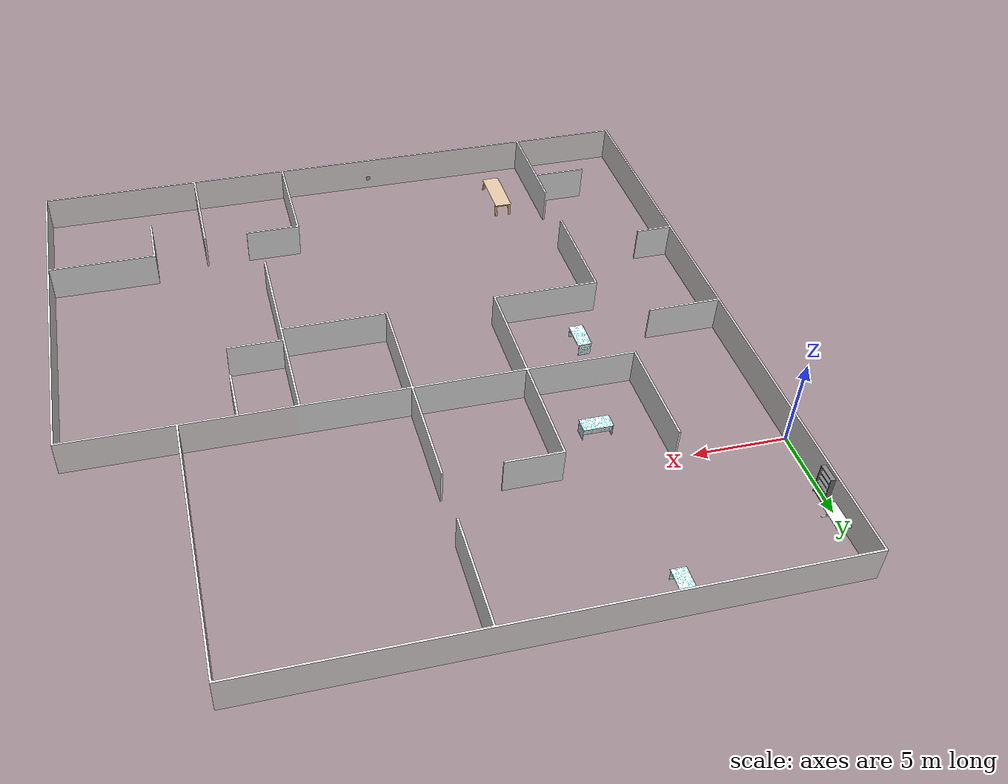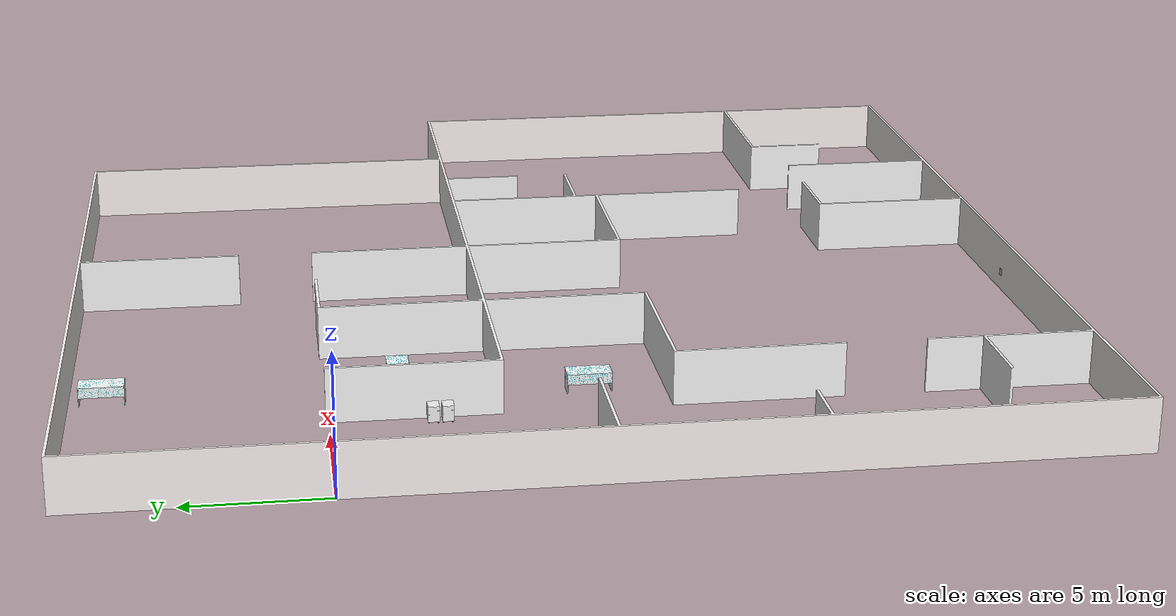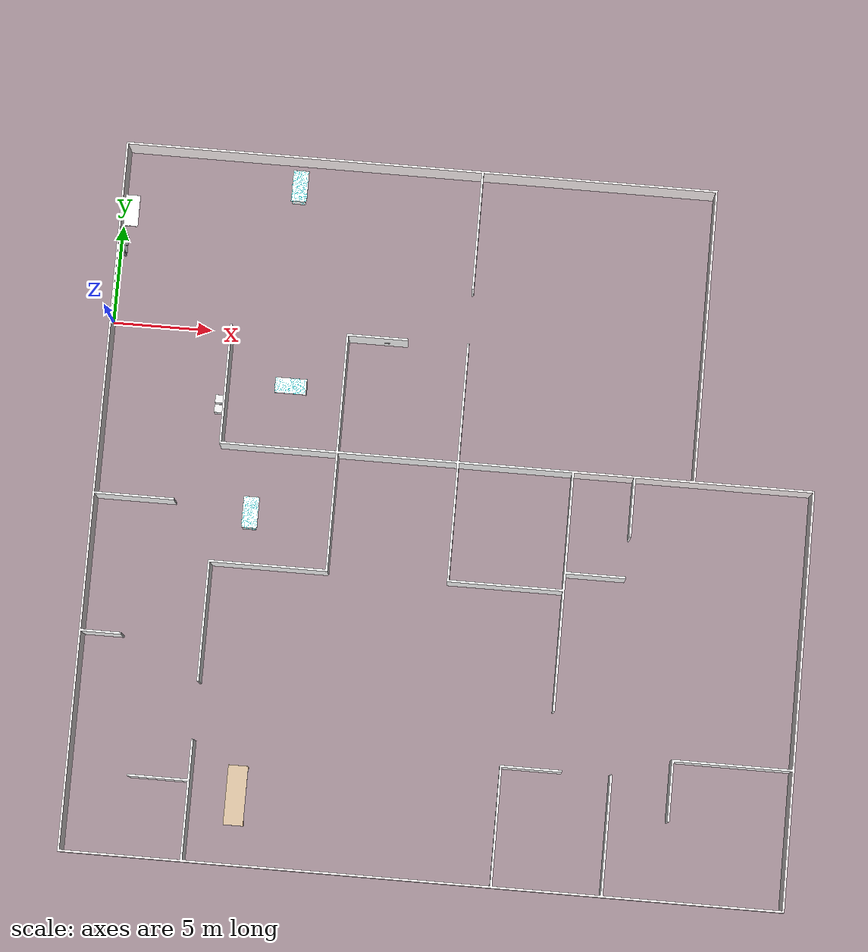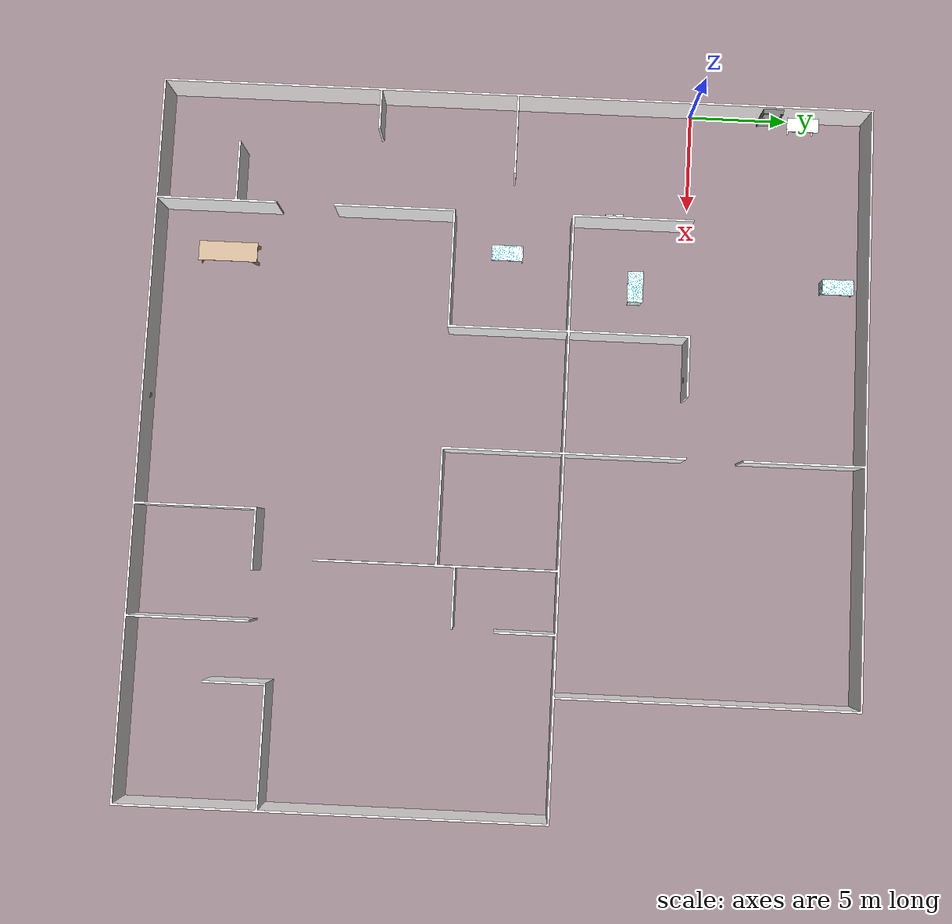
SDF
<sdf version="1.4">
 <world name="lite_chironix">
  <include><uri>model://sun</uri></include>
  <physics name="default_physics" default="0" type="ode">
   <real_time_factor>0.25</real_time_factor>
   <real_time_update_rate>250</real_time_update_rate>
  </physics>
  <scene><ambient>0.4 0.4 0.4 1</ambient><background>0.7 0.7 0.7 1</background><shadows>0</shadows></scene>
  <include><uri>model://walls</uri><name>all_Walls</name><pose>0.05 -9 0 0 0 0</pose></include>
  <include><uri>model://desk3</uri><name>dannies_desk</name><pose>5.0 26.18 -0.020 0 0 1.5707</pose></include>
  <include><uri>model://desk3</uri><name>dannies_desk</name><pose>5.0 26.18 -0.020 0 0 1.5707</pose></include>
  <include><uri>model://shelf</uri><name>shelf</name><pose>0.05 4.5 0 0 0 -1.5707</pose></include>
  <include><uri>model://drawer</uri><name>drawer_1</name><pose>7.6 -2 0 0 0 -1.5707</pose></include>
  <include><uri>model://drawer</uri><name>drawer_2</name><pose>7.6 -1.5 0 0 0 -1.5707</pose></include>
  <include><uri>model://smallTable1</uri><name>robot_table_1</name><pose>8.5 -3 0 0 0 0</pose></include>
  <include><uri>model://smallTable1</uri><name>robot_table_2</name><pose>8.25 -10 0 0 0 1.5707</pose></include>
  <include><uri>model://smallTable1</uri><name>small_table_3</name><pose>9.25 6.93 0 0 0 1.5707</pose></include>
  <include><uri>model://table</uri><name>table</name><pose>8.922 -24.966 0 0 0 1.5707</pose></include>
  <include><uri>model://marker1</uri><name>tag_1</name><pose>14 0 0.55 0 0 1.5707</pose></include>
  <include><uri>model://marker5</uri><name>tag_5</name><pose>16 -26.9 0.55 0 0 1.5707</pose></include>
 </world>
</sdf>

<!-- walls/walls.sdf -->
<sdf version="1.4">
    <model name="walls">
        <static>true</static>
        <link name="walls_link">

            <visual name="walls_mesh">
                <geometry>
                    <mesh>
                        <uri>model://walls/meshes/model.dae</uri>
                    </mesh>
                </geometry>
            </visual>
            <!-- External Walls-->
            <collision name="walls_collison_1">
                <pose>-0.05 0 1</pose>
                <geometry>
                    <box>
                        <size>0.1 36 2.00</size>
                    </box>
                </geometry>
            </collision>

            <collision name="walls_collison_2">
                <pose>18 -17.95 1 0 0 1.5707</pose>
                <geometry>
                    <box>
                        <size>0.1 36 2.00</size>
                    </box>
                </geometry>
            </collision>

            <collision name="walls_collison_3">
                <pose>35.95 -7.4 1 0 0 0</pose>
                <geometry>
                    <box>
                        <size>0.1 21 2.00</size>
                    </box>
                </geometry>
            </collision>

            <collision name="walls_collison_4">
                <pose>21 3.05 1 0 0 1.5707</pose>
                <geometry>
                    <box>
                        <size>0.1 30 2.00</size>
                    </box>
                </geometry>
            </collision>

            <collision name="walls_collison_5">
                <pose>29.95 10.5 1 0 0 0</pose>
                <geometry>
                    <box>
                        <size>0.1 15 2.00</size>
                    </box>
                </geometry>
            </collision>

            <collision name="walls_collison_6">
                <pose>15 17.95 1 0 0 1.5707</pose>
                <geometry>
                    <box>
                        <size>0.1 30 2.00</size>
                    </box>
                </geometry>
            </collision>
            <!-- Internal Walls-->
            <collision name="walls_collison_7">
                <pose>18.05 14.9 1 0 0 0</pose>
                <geometry>
                    <box>
                        <size>0.1 6 2.00</size>
                    </box>
                </geometry>
            </collision>

            <collision name="walls_collison_8">
                <pose>18.05 6.1 1 0 0 0</pose>
                <geometry>
                    <box>
                        <size>0.1 6 2.00</size>
                    </box>
                </geometry>
            </collision>

            <collision name="walls_collison_9">
                <pose>11.95 6.1 1 0 0 0</pose>
                <geometry>
                    <box>
                        <size>0.1 6 2.00</size>
                    </box>
                </geometry>
            </collision>

            <collision name="walls_collison_10">
                <pose>6.05 6.1 1 0 0 0</pose>
                <geometry>
                    <box>
                        <size>0.1 6 2.00</size>
                    </box>
                </geometry>
            </collision>

            <collision name="walls_collison_11">
                <pose>18.05 0 1 0 0 0</pose>
                <geometry>
                    <box>
                        <size>0.1 6 2.00</size>
                    </box>
                </geometry>
            </collision>

            <collision name="walls_collison_12">
                <pose>11.95 0 1 0 0 0</pose>
                <geometry>
                    <box>
                        <size>0.1 6 2.00</size>
                    </box>
                </geometry>
            </collision>

            <collision name="walls_collison_13">
                <pose>6.05 -6 1 0 0 0</pose>
                <geometry>
                    <box>
                        <size>0.1 6 2.00</size>
                    </box>
                </geometry>
            </collision>

            <collision name="walls_collison_14">
                <pose>6.05 -14.9 1 0 0 0</pose>
                <geometry>
                    <box>
                        <size>0.1 6 2.00</size>
                    </box>
                </geometry>
            </collision>

            <collision name="walls_collison_15">
                <pose>21.45 -14.9 1 0 0 0</pose>
                <geometry>
                    <box>
                        <size>0.1 6 2.00</size>
                    </box>
                </geometry>
            </collision>

            <collision name="walls_collison_16">
                <pose>26.95 -14.9 1 0 0 0</pose>
                <geometry>
                    <box>
                        <size>0.1 6 2.00</size>
                    </box>
                </geometry>
            </collision>

            <collision name="walls_collison_17">
                <pose>9 -2.95 1 0 0 1.5707</pose>
                <geometry>
                    <box>
                        <size>0.1 6 2.00</size>
                    </box>
                </geometry>
            </collision>

            <collision name="walls_collison_18">
                <pose>20.95 -2.95 1 0 0 1.5707</pose>
                <geometry>
                    <box>
                        <size>0.1 5.8 2.00</size>
                    </box>
                </geometry>
            </collision>

            <collision name="walls_collison_19">
                <pose>32.9 -10.95 1 0 0 1.5707</pose>
                <geometry>
                    <box>
                        <size>0.1 6 2.00</size>
                    </box>
                </geometry>
            </collision>

            <collision name="walls_collison_20">
                <pose>4.5 -13.95 1 0 0 1.5707</pose>
                <geometry>
                    <box>
                        <size>0.1 3 2.00</size>
                    </box>
                </geometry>
            </collision>

            <collision name="walls_collison_21">
                <pose>13.5 9.05 1 0 0 1.5707</pose>
                <geometry>
                    <box>
                        <size>0.1 3 2.00</size>
                    </box>
                </geometry>
            </collision>

            <collision name="walls_collison_22">
                <pose>25.4 -2.05 1 0 0 1.5707</pose>
                <geometry>
                    <box>
                        <size>0.1 3 2.00</size>
                    </box>
                </geometry>
            </collision>

            <collision name="walls_collison_23">
                <pose>23 -11.95 1 0 0 1.5707</pose>
                <geometry>
                    <box>
                        <size>0.1 3 2.00</size>
                    </box>
                </geometry>
            </collision>

            <collision name="walls_collison_24">
                <pose>29.95 -12.5 1 0 0 0</pose>
                <geometry>
                    <box>
                        <size>0.1 3 2.00</size>
                    </box>
                </geometry>
            </collision>

            <collision name="walls_collison_25">
                <pose>26.95 1.5 1 0 0 0</pose>
                <geometry>
                    <box>
                        <size>0.1 3 2.00</size>
                    </box>
                </geometry>
            </collision>

            <collision name="walls_collison_26">
                <pose>1 -6.95 1 0 0 1.5707</pose>
                <geometry>
                    <box>
                        <size>0.1 2 2.00</size>
                    </box>
                </geometry>
            </collision>

            <collision name="walls_collison_27">
                <pose>2 0 1 0 0 1.5707</pose>
                <geometry>
                    <box>
                        <size>0.1 4 2.00</size>
                    </box>
                </geometry>
            </collision>

            <collision name="walls_collison_28">
                <pose>23.85 -3 1 0 0 0</pose>
                <geometry>
                    <box>
                        <size>0.1 12 2.00</size>
                    </box>
                </geometry>
            </collision>

        </link>
    </model>
</sdf>

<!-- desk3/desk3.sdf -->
<sdf version="1.4">
    <model name="desk2">
        <static>true</static>
        <link name="desk3_link">

            <visual name="desk3_mesh">
                <geometry>
                    <mesh>
                        <uri>model://desk3/meshes/model.dae</uri>
                    </mesh>
                </geometry>
            </visual>

            <collision name="desk3_collison">
                <pose> -20.431646 4.602402 0.394284 0 0 0</pose>
                <geometry>
                    <box>
                        <size>1.591670 0.804758 0.765207</size>
                    </box>
                </geometry>
            </collision>
        </link>
    </model>
</sdf>

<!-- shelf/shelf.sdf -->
<sdf version="1.4">
    <model name="shelf">
        <static>true</static>
        <link name="shelf_link">

            <visual name="shelf_mesh">
                <geometry>
                    <mesh>
                        <uri>model://shelf/meshes/model.dae</uri>
                    </mesh>
                </geometry>
            </visual>

            <collision name="shelf_collison">
                <geometry>
                    <box>
                        <size>1 1 1</size>
                    </box>
                </geometry>
            </collision>

        </link>
    </model>
</sdf>

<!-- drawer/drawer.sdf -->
<sdf version="1.4">
    <model name="drawer">
        <static>true</static>
        <link name="drawer_link">

            <visual name="drawer_mesh">
                <geometry>
                    <mesh>
                        <uri>model://drawer/meshes/model.dae</uri>
                    </mesh>
                </geometry>
            </visual>

            <collision name="drawer_collison">
                <pose>2.053917 -1.803429 0.317839 0 0 0</pose>
                <geometry>
                    <box>
                        <size>0.429536 0.536622 0.612838</size>
                    </box>
                </geometry>
            </collision>

        </link>
    </model>
</sdf>

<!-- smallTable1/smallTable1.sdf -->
<sdf version="1.4">
    <model name="smallTable1">
        <static>true</static>
        <link name="smallTable1_link">

            <visual name="smallTable1_mesh">
                <geometry>
                    <mesh>
                        <uri>model://smallTable1/meshes/model.dae</uri>
                    </mesh>
                </geometry>
            </visual>

            <collision name="smallTable1_collison">
                <pose>0.800299 0.401553 0.384317</pose>
                <geometry>
                    <box>
                        <size>1.6356 0.8 0.7284</size>
                    </box>
                </geometry>
            </collision>
        </link>
    </model>
</sdf>

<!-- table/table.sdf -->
<sdf version="1.4">
    <model name="table">
        <static>true</static>
        <link name="table_link">

            <visual name="table_mesh">
                <geometry>
                    <mesh>
                        <uri>model://table/meshes/model.dae</uri>
                    </mesh>
                </geometry>
            </visual>

            <collision name="table_collison">
                <pose>1.512611 0.491706 0.367172 0 0 0 </pose>
                <geometry>
                    <box>
                        <size>3.046340 1.004740 0.805770</size>
                    </box>
                </geometry>
            </collision>

        </link>
    </model>
</sdf>

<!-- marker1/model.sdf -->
<sdf version="1.6">
  <model name="marker1">
    <static>true</static>
    <link name="link">
      <visual name="visual">
        <geometry>
          <mesh>
            <uri>model://marker1/meshes/marker1.dae</uri>
          <scale>0.52 0.52 0.52</scale></mesh>
        </geometry>
      </visual>
    </link>
  </model>
</sdf>

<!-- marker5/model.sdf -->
<sdf version="1.6">
  <model name="marker5">
    <static>true</static>
    <link name="link">
      <visual name="visual">
        <geometry>
          <mesh>
            <uri>model://marker5/meshes/marker5.dae</uri>
          <scale>0.52 0.52 0.52</scale></mesh>
        </geometry>
      </visual>
    </link>
  </model>
</sdf>
